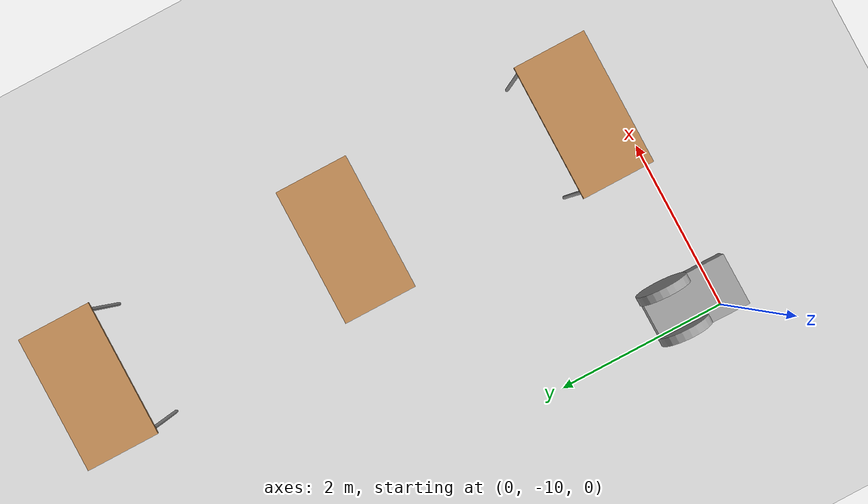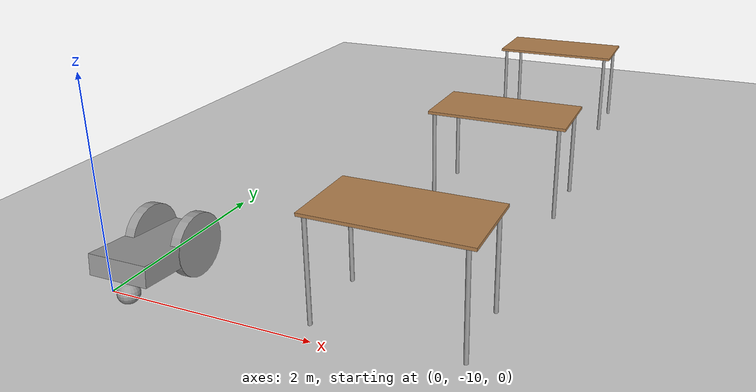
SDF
<sdf version="1.6">
 <world name="default">
  <model name="ground_plane">
   <static>1</static>
   <link name="link">
    <collision name="collision">
     <geometry><plane><normal>0 0 1</normal><size>100 100</size></plane></geometry>
     <surface><friction><ode><mu>100</mu><mu2>50</mu2></ode></friction></surface>
    </collision>
    <visual name="visual">
     <cast_shadows>0</cast_shadows>
     <geometry><plane><normal>0 0 1</normal><size>100 100</size></plane></geometry>
     <material>
      <script><uri>file://media/materials/scripts/gazebo.material</uri><name>Gazebo/Grey</name></script>
     </material>
    </visual>
   </link>
  </model>
  <model name="table_clone_clone_3">
   <static>1</static>
   <link name="link">
    <collision name="surface">
     <pose>0 0 1 0 -0 0</pose>
     <geometry><box><size>1.5 0.8 0.03</size></box></geometry>
     <surface><friction><ode><mu>0.6</mu><mu2>0.6</mu2></ode></friction></surface>
    </collision>
    <visual name="visual1">
     <pose>0 0 1 0 -0 0</pose>
     <geometry><box><size>1.5 0.8 0.03</size></box></geometry>
     <material>
      <script><uri>file://media/materials/scripts/gazebo.material</uri><name>Gazebo/Wood</name></script>
     </material>
    </visual>
    <collision name="front_left_leg">
     <pose>0.68 0.38 0.5 0 -0 0</pose>
     <geometry><cylinder><radius>0.02</radius><length>1</length></cylinder></geometry>
    </collision>
    <visual name="front_left_leg">
     <pose>0.68 0.38 0.5 0 -0 0</pose>
     <geometry><cylinder><radius>0.02</radius><length>1</length></cylinder></geometry>
     <material>
      <script><uri>file://media/materials/scripts/gazebo.material</uri><name>Gazebo/Grey</name></script>
     </material>
    </visual>
    <collision name="front_right_leg">
     <pose>0.68 -0.38 0.5 0 -0 0</pose>
     <geometry><cylinder><radius>0.02</radius><length>1</length></cylinder></geometry>
    </collision>
    <visual name="front_right_leg">
     <pose>0.68 -0.38 0.5 0 -0 0</pose>
     <geometry><cylinder><radius>0.02</radius><length>1</length></cylinder></geometry>
     <material>
      <script><uri>file://media/materials/scripts/gazebo.material</uri><name>Gazebo/Grey</name></script>
     </material>
    </visual>
    <collision name="back_right_leg">
     <pose>-0.68 -0.38 0.5 0 -0 0</pose>
     <geometry><cylinder><radius>0.02</radius><length>1</length></cylinder></geometry>
    </collision>
    <visual name="back_right_leg">
     <pose>-0.68 -0.38 0.5 0 -0 0</pose>
     <geometry><cylinder><radius>0.02</radius><length>1</length></cylinder></geometry>
     <material>
      <script><uri>file://media/materials/scripts/gazebo.material</uri><name>Gazebo/Grey</name></script>
     </material>
    </visual>
    <collision name="back_left_leg">
     <pose>-0.68 0.38 0.5 0 -0 0</pose>
     <geometry><cylinder><radius>0.02</radius><length>1</length></cylinder></geometry>
    </collision>
    <visual name="back_left_leg">
     <pose>-0.68 0.38 0.5 0 -0 0</pose>
     <geometry><cylinder><radius>0.02</radius><length>1</length></cylinder></geometry>
     <material>
      <script><uri>file://media/materials/scripts/gazebo.material</uri><name>Gazebo/Grey</name></script>
     </material>
    </visual>
   </link>
   <pose>2.5522 -9.40203 0 0 -0 0</pose>
  </model>
  <model name="table_clone_clone_4">
   <static>1</static>
   <link name="link">
    <collision name="surface">
     <pose>0 0 1 0 -0 0</pose>
     <geometry><box><size>1.5 0.8 0.03</size></box></geometry>
     <surface><friction><ode><mu>0.6</mu><mu2>0.6</mu2></ode></friction></surface>
    </collision>
    <visual name="visual1">
     <pose>0 0 1 0 -0 0</pose>
     <geometry><box><size>1.5 0.8 0.03</size></box></geometry>
     <material>
      <script><uri>file://media/materials/scripts/gazebo.material</uri><name>Gazebo/Wood</name></script>
     </material>
    </visual>
    <collision name="front_left_leg">
     <pose>0.68 0.38 0.5 0 -0 0</pose>
     <geometry><cylinder><radius>0.02</radius><length>1</length></cylinder></geometry>
    </collision>
    <visual name="front_left_leg">
     <pose>0.68 0.38 0.5 0 -0 0</pose>
     <geometry><cylinder><radius>0.02</radius><length>1</length></cylinder></geometry>
     <material>
      <script><uri>file://media/materials/scripts/gazebo.material</uri><name>Gazebo/Grey</name></script>
     </material>
    </visual>
    <collision name="front_right_leg">
     <pose>0.68 -0.38 0.5 0 -0 0</pose>
     <geometry><cylinder><radius>0.02</radius><length>1</length></cylinder></geometry>
    </collision>
    <visual name="front_right_leg">
     <pose>0.68 -0.38 0.5 0 -0 0</pose>
     <geometry><cylinder><radius>0.02</radius><length>1</length></cylinder></geometry>
     <material>
      <script><uri>file://media/materials/scripts/gazebo.material</uri><name>Gazebo/Grey</name></script>
     </material>
    </visual>
    <collision name="back_right_leg">
     <pose>-0.68 -0.38 0.5 0 -0 0</pose>
     <geometry><cylinder><radius>0.02</radius><length>1</length></cylinder></geometry>
    </collision>
    <visual name="back_right_leg">
     <pose>-0.68 -0.38 0.5 0 -0 0</pose>
     <geometry><cylinder><radius>0.02</radius><length>1</length></cylinder></geometry>
     <material>
      <script><uri>file://media/materials/scripts/gazebo.material</uri><name>Gazebo/Grey</name></script>
     </material>
    </visual>
    <collision name="back_left_leg">
     <pose>-0.68 0.38 0.5 0 -0 0</pose>
     <geometry><cylinder><radius>0.02</radius><length>1</length></cylinder></geometry>
    </collision>
    <visual name="back_left_leg">
     <pose>-0.68 0.38 0.5 0 -0 0</pose>
     <geometry><cylinder><radius>0.02</radius><length>1</length></cylinder></geometry>
     <material>
      <script><uri>file://media/materials/scripts/gazebo.material</uri><name>Gazebo/Grey</name></script>
     </material>
    </visual>
   </link>
   <pose>2.57285 -6.68685 0 0 -0 0</pose>
  </model>
  <model name="table_clone_clone_5">
   <static>1</static>
   <link name="link">
    <collision name="surface">
     <pose>0 0 1 0 -0 0</pose>
     <geometry><box><size>1.5 0.8 0.03</size></box></geometry>
     <surface><friction><ode><mu>0.6</mu><mu2>0.6</mu2></ode></friction></surface>
    </collision>
    <visual name="visual1">
     <pose>0 0 1 0 -0 0</pose>
     <geometry><box><size>1.5 0.8 0.03</size></box></geometry>
     <material>
      <script><uri>file://media/materials/scripts/gazebo.material</uri><name>Gazebo/Wood</name></script>
     </material>
    </visual>
    <collision name="front_left_leg">
     <pose>0.68 0.38 0.5 0 -0 0</pose>
     <geometry><cylinder><radius>0.02</radius><length>1</length></cylinder></geometry>
    </collision>
    <visual name="front_left_leg">
     <pose>0.68 0.38 0.5 0 -0 0</pose>
     <geometry><cylinder><radius>0.02</radius><length>1</length></cylinder></geometry>
     <material>
      <script><uri>file://media/materials/scripts/gazebo.material</uri><name>Gazebo/Grey</name></script>
     </material>
    </visual>
    <collision name="front_right_leg">
     <pose>0.68 -0.38 0.5 0 -0 0</pose>
     <geometry><cylinder><radius>0.02</radius><length>1</length></cylinder></geometry>
    </collision>
    <visual name="front_right_leg">
     <pose>0.68 -0.38 0.5 0 -0 0</pose>
     <geometry><cylinder><radius>0.02</radius><length>1</length></cylinder></geometry>
     <material>
      <script><uri>file://media/materials/scripts/gazebo.material</uri><name>Gazebo/Grey</name></script>
     </material>
    </visual>
    <collision name="back_right_leg">
     <pose>-0.68 -0.38 0.5 0 -0 0</pose>
     <geometry><cylinder><radius>0.02</radius><length>1</length></cylinder></geometry>
    </collision>
    <visual name="back_right_leg">
     <pose>-0.68 -0.38 0.5 0 -0 0</pose>
     <geometry><cylinder><radius>0.02</radius><length>1</length></cylinder></geometry>
     <material>
      <script><uri>file://media/materials/scripts/gazebo.material</uri><name>Gazebo/Grey</name></script>
     </material>
    </visual>
    <collision name="back_left_leg">
     <pose>-0.68 0.38 0.5 0 -0 0</pose>
     <geometry><cylinder><radius>0.02</radius><length>1</length></cylinder></geometry>
    </collision>
    <visual name="back_left_leg">
     <pose>-0.68 0.38 0.5 0 -0 0</pose>
     <geometry><cylinder><radius>0.02</radius><length>1</length></cylinder></geometry>
     <material>
      <script><uri>file://media/materials/scripts/gazebo.material</uri><name>Gazebo/Grey</name></script>
     </material>
    </visual>
   </link>
   <pose>2.48664 -3.69437 0 0 -0 0</pose>
  </model>
  <model name="robot_0_clone">
   <link name="link_0">
    <pose>-0.012293 0.007298 0.050001 0 -0 0</pose>
    <inertial>
     <mass>1</mass>
     <inertia>
      <ixx>0.166667</ixx>
      <ixy>0</ixy>
      <ixz>0</ixz>
      <iyy>0.166667</iyy>
      <iyz>0</iyz>
      <izz>0.166667</izz>
     </inertia>
    </inertial>
    <visual name="visual">
     <geometry><box><size>1 0.6 0.2</size></box></geometry>
     <material>
      <lighting>1</lighting>
      <script><uri>file://media/materials/scripts/gazebo.material</uri><name>Gazebo/Grey</name></script>
      <ambient>0.3 0.3 0.3 1</ambient>
      <diffuse>0.7 0.7 0.7 1</diffuse>
      <specular>0.01 0.01 0.01 1</specular>
      <emissive>0 0 0 1</emissive>
      <shader type="vertex"><normal_map>__default__</normal_map></shader>
     </material>
    </visual>
    <collision name="collision">
     <geometry><box><size>1 0.6 0.2</size></box></geometry>
     <surface>
      <friction>
       <ode><mu>1</mu><mu2>1</mu2><fdir1>0 0 0</fdir1><slip1>0</slip1><slip2>0</slip2></ode>
       <torsional>
        <coefficient>1</coefficient>
        <patch_radius>0</patch_radius>
        <surface_radius>0</surface_radius>
        <use_patch_radius>1</use_patch_radius>
        <ode><slip>0</slip></ode>
       </torsional>
      </friction>
      <bounce><restitution_coefficient>0</restitution_coefficient><threshold>1e+06</threshold></bounce>
      <contact>
       <collide_without_contact>0</collide_without_contact>
       <collide_without_contact_bitmask>1</collide_without_contact_bitmask>
       <collide_bitmask>1</collide_bitmask>
       <ode>
        <soft_cfm>0</soft_cfm>
        <soft_erp>0.2</soft_erp>
        <kp>1e+13</kp>
        <kd>1</kd>
        <max_vel>0.01</max_vel>
        <min_depth>0</min_depth>
       </ode>
       <bullet>
        <split_impulse>1</split_impulse>
        <split_impulse_penetration_threshold>-0.01</split_impulse_penetration_threshold>
        <soft_cfm>0</soft_cfm>
        <soft_erp>0.2</soft_erp>
        <kp>1e+13</kp>
        <kd>1</kd>
       </bullet>
      </contact>
     </surface>
    </collision>
   </link>
   <link name="link_2">
    <pose>0.212296 0.252677 0.069997 1.5707 -0 0</pose>
    <inertial>
     <mass>1</mass>
     <inertia><ixx>0.145833</ixx><ixy>0</ixy><ixz>0</ixz><iyy>0.145833</iyy><iyz>0</iyz><izz>0.125</izz></inertia>
     <pose>0 0 0 1.5707 -0 0</pose>
    </inertial>
    <visual name="visual">
     <geometry><cylinder><radius>0.3</radius><length>0.1</length></cylinder></geometry>
     <material>
      <lighting>1</lighting>
      <script><uri>file://media/materials/scripts/gazebo.material</uri><name>Gazebo/Grey</name></script>
      <ambient>0.3 0.3 0.3 1</ambient>
      <diffuse>0.7 0.7 0.7 1</diffuse>
      <specular>0.01 0.01 0.01 1</specular>
      <emissive>0 0 0 1</emissive>
      <shader type="vertex"><normal_map>__default__</normal_map></shader>
     </material>
    </visual>
    <collision name="collision">
     <geometry><cylinder><radius>0.3</radius><length>0.1</length></cylinder></geometry>
     <surface>
      <friction>
       <ode><mu>1</mu><mu2>1</mu2><fdir1>0 0 0</fdir1><slip1>0</slip1><slip2>0</slip2></ode>
       <torsional>
        <coefficient>1</coefficient>
        <patch_radius>0</patch_radius>
        <surface_radius>0</surface_radius>
        <use_patch_radius>1</use_patch_radius>
        <ode><slip>0</slip></ode>
       </torsional>
      </friction>
      <bounce><restitution_coefficient>0</restitution_coefficient><threshold>1e+06</threshold></bounce>
      <contact>
       <collide_without_contact>0</collide_without_contact>
       <collide_without_contact_bitmask>1</collide_without_contact_bitmask>
       <collide_bitmask>1</collide_bitmask>
       <ode>
        <soft_cfm>0</soft_cfm>
        <soft_erp>0.2</soft_erp>
        <kp>1e+13</kp>
        <kd>1</kd>
        <max_vel>0.01</max_vel>
        <min_depth>0</min_depth>
       </ode>
       <bullet>
        <split_impulse>1</split_impulse>
        <split_impulse_penetration_threshold>-0.01</split_impulse_penetration_threshold>
        <soft_cfm>0</soft_cfm>
        <soft_erp>0.2</soft_erp>
        <kp>1e+13</kp>
        <kd>1</kd>
       </bullet>
      </contact>
     </surface>
    </collision>
   </link>
   <link name="link_2_clone">
    <pose>0.212296 -0.247265 0.070001 1.5707 -0 0</pose>
    <inertial>
     <mass>1</mass>
     <inertia><ixx>0.145833</ixx><ixy>0</ixy><ixz>0</ixz><iyy>0.145833</iyy><iyz>0</iyz><izz>0.125</izz></inertia>
     <pose>0 0 0 1.5707 -0 0</pose>
    </inertial>
    <visual name="visual">
     <geometry><cylinder><radius>0.3</radius><length>0.1</length></cylinder></geometry>
     <material>
      <lighting>1</lighting>
      <script><uri>file://media/materials/scripts/gazebo.material</uri><name>Gazebo/Grey</name></script>
      <ambient>0.3 0.3 0.3 1</ambient>
      <diffuse>0.7 0.7 0.7 1</diffuse>
      <specular>0.01 0.01 0.01 1</specular>
      <emissive>0 0 0 1</emissive>
      <shader type="vertex"><normal_map>__default__</normal_map></shader>
     </material>
    </visual>
    <collision name="collision">
     <geometry><cylinder><radius>0.3</radius><length>0.1</length></cylinder></geometry>
     <surface>
      <friction>
       <ode><mu>1</mu><mu2>1</mu2><fdir1>0 0 0</fdir1><slip1>0</slip1><slip2>0</slip2></ode>
       <torsional>
        <coefficient>1</coefficient>
        <patch_radius>0</patch_radius>
        <surface_radius>0</surface_radius>
        <use_patch_radius>1</use_patch_radius>
        <ode><slip>0</slip></ode>
       </torsional>
      </friction>
      <bounce><restitution_coefficient>0</restitution_coefficient><threshold>1e+06</threshold></bounce>
      <contact>
       <collide_without_contact>0</collide_without_contact>
       <collide_without_contact_bitmask>1</collide_without_contact_bitmask>
       <collide_bitmask>1</collide_bitmask>
       <ode>
        <soft_cfm>0</soft_cfm>
        <soft_erp>0.2</soft_erp>
        <kp>1e+13</kp>
        <kd>1</kd>
        <max_vel>0.01</max_vel>
        <min_depth>0</min_depth>
       </ode>
       <bullet>
        <split_impulse>1</split_impulse>
        <split_impulse_penetration_threshold>-0.01</split_impulse_penetration_threshold>
        <soft_cfm>0</soft_cfm>
        <soft_erp>0.2</soft_erp>
        <kp>1e+13</kp>
        <kd>1</kd>
       </bullet>
      </contact>
     </surface>
    </collision>
   </link>
   <link name="link_3">
    <pose>-0.412293 -0.012702 -0.189999 0 -0 0</pose>
    <inertial>
     <mass>1</mass>
     <inertia><ixx>0.1</ixx><ixy>0</ixy><ixz>0</ixz><iyy>0.1</iyy><iyz>0</iyz><izz>0.1</izz></inertia>
    </inertial>
    <visual name="visual">
     <geometry><sphere><radius>0.1</radius></sphere></geometry>
     <material>
      <lighting>1</lighting>
      <script><uri>file://media/materials/scripts/gazebo.material</uri><name>Gazebo/Grey</name></script>
      <ambient>0.3 0.3 0.3 1</ambient>
      <diffuse>0.7 0.7 0.7 1</diffuse>
      <specular>0.01 0.01 0.01 1</specular>
      <emissive>0 0 0 1</emissive>
      <shader type="vertex"><normal_map>__default__</normal_map></shader>
     </material>
    </visual>
    <collision name="collision">
     <geometry><sphere><radius>0.1</radius></sphere></geometry>
     <surface>
      <friction>
       <ode><mu>1</mu><mu2>1</mu2><fdir1>0 0 0</fdir1><slip1>0</slip1><slip2>0</slip2></ode>
       <torsional>
        <coefficient>1</coefficient>
        <patch_radius>0</patch_radius>
        <surface_radius>0</surface_radius>
        <use_patch_radius>1</use_patch_radius>
        <ode><slip>0</slip></ode>
       </torsional>
      </friction>
      <bounce><restitution_coefficient>0</restitution_coefficient><threshold>1e+06</threshold></bounce>
      <contact>
       <collide_without_contact>0</collide_without_contact>
       <collide_without_contact_bitmask>1</collide_without_contact_bitmask>
       <collide_bitmask>1</collide_bitmask>
       <ode>
        <soft_cfm>0</soft_cfm>
        <soft_erp>0.2</soft_erp>
        <kp>1e+13</kp>
        <kd>1</kd>
        <max_vel>0.01</max_vel>
        <min_depth>0</min_depth>
       </ode>
       <bullet>
        <split_impulse>1</split_impulse>
        <split_impulse_penetration_threshold>-0.01</split_impulse_penetration_threshold>
        <soft_cfm>0</soft_cfm>
        <soft_erp>0.2</soft_erp>
        <kp>1e+13</kp>
        <kd>1</kd>
       </bullet>
      </contact>
     </surface>
    </collision>
   </link>
   <joint name="link_0_JOINT_0" type="revolute">
    <parent>link_0</parent>
    <child>link_2</child>
    <axis>
     <xyz>0 0 1</xyz>
     <use_parent_model_frame>0</use_parent_model_frame>
     <limit>
      <lower>-1.79769e+308</lower>
      <upper>1.79769e+308</upper>
      <effort>-1</effort>
      <velocity>-1</velocity>
     </limit>
     <dynamics>
      <spring_reference>0</spring_reference>
      <spring_stiffness>0</spring_stiffness>
      <damping>0</damping>
     </dynamics>
    </axis>
    <physics>
     <ode><limit><cfm>0</cfm><erp>0.2</erp></limit><suspension><cfm>0</cfm><erp>0.2</erp></suspension></ode>
    </physics>
   </joint>
   <joint name="link_0_JOINT_1" type="revolute">
    <parent>link_0</parent>
    <child>link_2_clone</child>
    <axis>
     <xyz>0 0 1</xyz>
     <use_parent_model_frame>0</use_parent_model_frame>
     <limit>
      <lower>-1.79769e+308</lower>
      <upper>1.79769e+308</upper>
      <effort>-1</effort>
      <velocity>-1</velocity>
     </limit>
     <dynamics>
      <spring_reference>0</spring_reference>
      <spring_stiffness>0</spring_stiffness>
      <damping>0</damping>
     </dynamics>
    </axis>
    <physics>
     <ode><limit><cfm>0</cfm><erp>0.2</erp></limit><suspension><cfm>0</cfm><erp>0.2</erp></suspension></ode>
    </physics>
   </joint>
   <joint name="link_0_JOINT_2" type="ball">
    <parent>link_0</parent>
    <child>link_3</child>
    <physics>
     <ode><limit><cfm>0</cfm><erp>0.2</erp></limit><suspension><cfm>0</cfm><erp>0.2</erp></suspension></ode>
    </physics>
   </joint>
   <static>0</static>
   <pose>0.257545 -9.65944 0.250311 1.5e-05 0.094332 1.57711</pose>
  </model>
 </world>
</sdf>
